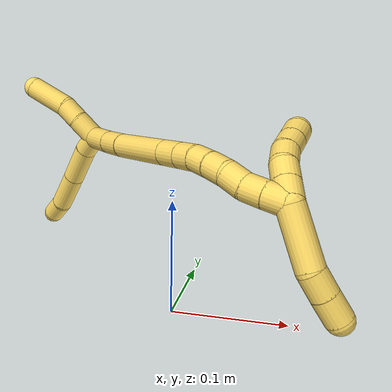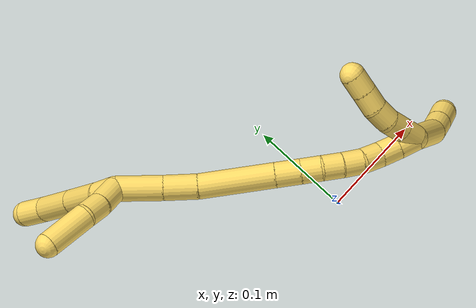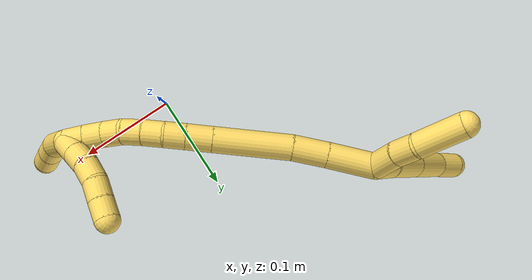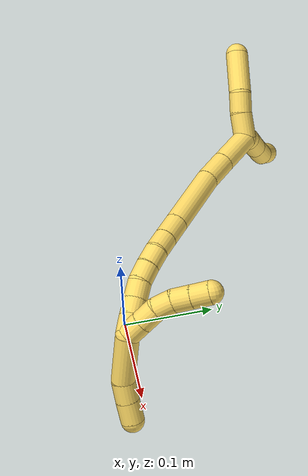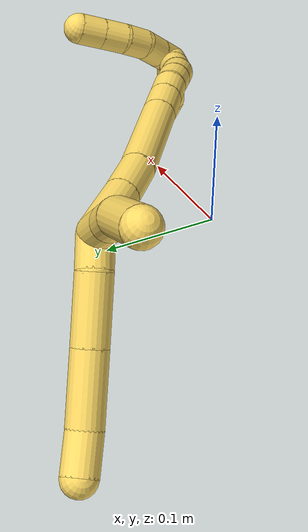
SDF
<sdf version="1.7">
 <world name="default">
  <model name="5">
   <static>0</static>
   <link name="5">
    <collision name="collision-cylinder-e_1_2_8">
     <pose>-0.011581 0.002205 -0.00251 -2.42087 -1.28992 2.21286</pose>
     <geometry><cylinder><radius>0.0125</radius><length>0.024106</length></cylinder></geometry>
     <surface>
      <friction><ode><mu>1.16</mu><mu2>1.16</mu2><slip1>0</slip1><slip2>0</slip2></ode></friction>
      <contact><ode><kp>1e+06</kp><kd>1</kd><max_vel>0</max_vel><min_depth>0.001</min_depth></ode></contact>
     </surface>
    </collision>
    <visual name="visual-cylinder-e_1_2_8">
     <pose>-0.011581 0.002205 -0.00251 -2.42087 -1.28992 2.21286</pose>
     <geometry><cylinder><radius>0.0125</radius><length>0.024106</length></cylinder></geometry>
     <material><ambient>1 0.858824 0.4 1</ambient></material>
    </visual>
    <collision name="collision-cylinder-e_2_8_9">
     <pose>-0.044568 0.008166 -0.014063 -2.74788 -1.14179 2.53939</pose>
     <geometry><cylinder><radius>0.0125</radius><length>0.047079</length></cylinder></geometry>
     <surface>
      <friction><ode><mu>1.16</mu><mu2>1.16</mu2><slip1>0</slip1><slip2>0</slip2></ode></friction>
      <contact><ode><kp>1e+06</kp><kd>1</kd><max_vel>0</max_vel><min_depth>0.001</min_depth></ode></contact>
     </surface>
    </collision>
    <visual name="visual-cylinder-e_2_8_9">
     <pose>-0.044568 0.008166 -0.014063 -2.74788 -1.14179 2.53939</pose>
     <geometry><cylinder><radius>0.0125</radius><length>0.047079</length></cylinder></geometry>
     <material><ambient>1 0.858824 0.4 1</ambient></material>
    </visual>
    <collision name="collision-cylinder-e_3_9_10">
     <pose>-0.088836 0.016153 -0.032305 -2.71058 -1.15387 2.49264</pose>
     <geometry><cylinder><radius>0.0125</radius><length>0.050007</length></cylinder></geometry>
     <surface>
      <friction><ode><mu>1.16</mu><mu2>1.16</mu2><slip1>0</slip1><slip2>0</slip2></ode></friction>
      <contact><ode><kp>1e+06</kp><kd>1</kd><max_vel>0</max_vel><min_depth>0.001</min_depth></ode></contact>
     </surface>
    </collision>
    <visual name="visual-cylinder-e_3_9_10">
     <pose>-0.088836 0.016153 -0.032305 -2.71058 -1.15387 2.49264</pose>
     <geometry><cylinder><radius>0.0125</radius><length>0.050007</length></cylinder></geometry>
     <material><ambient>1 0.858824 0.4 1</ambient></material>
    </visual>
    <collision name="collision-cylinder-e_4_10_6">
     <pose>-0.125354 0.024273 -0.04392 -2.12661 -1.24722 1.82548</pose>
     <geometry><cylinder><radius>0.0125</radius><length>0.028808</length></cylinder></geometry>
     <surface>
      <friction><ode><mu>1.16</mu><mu2>1.16</mu2><slip1>0</slip1><slip2>0</slip2></ode></friction>
      <contact><ode><kp>1e+06</kp><kd>1</kd><max_vel>0</max_vel><min_depth>0.001</min_depth></ode></contact>
     </surface>
    </collision>
    <visual name="visual-cylinder-e_4_10_6">
     <pose>-0.125354 0.024273 -0.04392 -2.12661 -1.24722 1.82548</pose>
     <geometry><cylinder><radius>0.0125</radius><length>0.028808</length></cylinder></geometry>
     <material><ambient>1 0.858824 0.4 1</ambient></material>
    </visual>
    <collision name="collision-cylinder-e_1_2_11">
     <pose>-0.002727 -0.000408 0.014197 0.028763 -0.189668 -0.002736</pose>
     <geometry><cylinder><radius>0.0125</radius><length>0.028924</length></cylinder></geometry>
     <surface>
      <friction><ode><mu>1.16</mu><mu2>1.16</mu2><slip1>0</slip1><slip2>0</slip2></ode></friction>
      <contact><ode><kp>1e+06</kp><kd>1</kd><max_vel>0</max_vel><min_depth>0.001</min_depth></ode></contact>
     </surface>
    </collision>
    <visual name="visual-cylinder-e_1_2_11">
     <pose>-0.002727 -0.000408 0.014197 0.028763 -0.189668 -0.002736</pose>
     <geometry><cylinder><radius>0.0125</radius><length>0.028924</length></cylinder></geometry>
     <material><ambient>1 0.858824 0.4 1</ambient></material>
    </visual>
    <collision name="collision-cylinder-e_2_11_12">
     <pose>-0.00833 0.000207 0.039559 -0.09143 -0.251183 0.011552</pose>
     <geometry><cylinder><radius>0.0125</radius><length>0.02315</length></cylinder></geometry>
     <surface>
      <friction><ode><mu>1.16</mu><mu2>1.16</mu2><slip1>0</slip1><slip2>0</slip2></ode></friction>
      <contact><ode><kp>1e+06</kp><kd>1</kd><max_vel>0</max_vel><min_depth>0.001</min_depth></ode></contact>
     </surface>
    </collision>
    <visual name="visual-cylinder-e_2_11_12">
     <pose>-0.00833 0.000207 0.039559 -0.09143 -0.251183 0.011552</pose>
     <geometry><cylinder><radius>0.0125</radius><length>0.02315</length></cylinder></geometry>
     <material><ambient>1 0.858824 0.4 1</ambient></material>
    </visual>
    <collision name="collision-cylinder-e_3_12_5">
     <pose>-0.02322 0.002538 0.071417 -0.063121 -0.525111 0.01697</pose>
     <geometry><cylinder><radius>0.0125</radius><length>0.047926</length></cylinder></geometry>
     <surface>
      <friction><ode><mu>1.16</mu><mu2>1.16</mu2><slip1>0</slip1><slip2>0</slip2></ode></friction>
      <contact><ode><kp>1e+06</kp><kd>1</kd><max_vel>0</max_vel><min_depth>0.001</min_depth></ode></contact>
     </surface>
    </collision>
    <visual name="visual-cylinder-e_3_12_5">
     <pose>-0.02322 0.002538 0.071417 -0.063121 -0.525111 0.01697</pose>
     <geometry><cylinder><radius>0.0125</radius><length>0.047926</length></cylinder></geometry>
     <material><ambient>1 0.858824 0.4 1</ambient></material>
    </visual>
    <collision name="collision-cylinder-e_1_2_13">
     <pose>0.015897 -0.014302 -0.008865 2.12568 0.756998 1.2406</pose>
     <geometry><cylinder><radius>0.0125</radius><length>0.046297</length></cylinder></geometry>
     <surface>
      <friction><ode><mu>1.16</mu><mu2>1.16</mu2><slip1>0</slip1><slip2>0</slip2></ode></friction>
      <contact><ode><kp>1e+06</kp><kd>1</kd><max_vel>0</max_vel><min_depth>0.001</min_depth></ode></contact>
     </surface>
    </collision>
    <visual name="visual-cylinder-e_1_2_13">
     <pose>0.015897 -0.014302 -0.008865 2.12568 0.756998 1.2406</pose>
     <geometry><cylinder><radius>0.0125</radius><length>0.046297</length></cylinder></geometry>
     <material><ambient>1 0.858824 0.4 1</ambient></material>
    </visual>
    <collision name="collision-cylinder-e_2_13_14">
     <pose>0.043716 -0.038554 -0.02393 2.12805 0.793759 1.29338</pose>
     <geometry><cylinder><radius>0.0125</radius><length>0.033441</length></cylinder></geometry>
     <surface>
      <friction><ode><mu>1.16</mu><mu2>1.16</mu2><slip1>0</slip1><slip2>0</slip2></ode></friction>
      <contact><ode><kp>1e+06</kp><kd>1</kd><max_vel>0</max_vel><min_depth>0.001</min_depth></ode></contact>
     </surface>
    </collision>
    <visual name="visual-cylinder-e_2_13_14">
     <pose>0.043716 -0.038554 -0.02393 2.12805 0.793759 1.29338</pose>
     <geometry><cylinder><radius>0.0125</radius><length>0.033441</length></cylinder></geometry>
     <material><ambient>1 0.858824 0.4 1</ambient></material>
    </visual>
    <collision name="collision-cylinder-e_3_14_15">
     <pose>0.084133 -0.067561 -0.045334 2.2442 0.863109 1.52633</pose>
     <geometry><cylinder><radius>0.0125</radius><length>0.075001</length></cylinder></geometry>
     <surface>
      <friction><ode><mu>1.16</mu><mu2>1.16</mu2><slip1>0</slip1><slip2>0</slip2></ode></friction>
      <contact><ode><kp>1e+06</kp><kd>1</kd><max_vel>0</max_vel><min_depth>0.001</min_depth></ode></contact>
     </surface>
    </collision>
    <visual name="visual-cylinder-e_3_14_15">
     <pose>0.084133 -0.067561 -0.045334 2.2442 0.863109 1.52633</pose>
     <geometry><cylinder><radius>0.0125</radius><length>0.075001</length></cylinder></geometry>
     <material><ambient>1 0.858824 0.4 1</ambient></material>
    </visual>
    <collision name="collision-cylinder-e_4_15_16">
     <pose>0.122134 -0.093016 -0.065623 2.24239 0.860614 1.52074</pose>
     <geometry><cylinder><radius>0.0125</radius><length>0.025073</length></cylinder></geometry>
     <surface>
      <friction><ode><mu>1.16</mu><mu2>1.16</mu2><slip1>0</slip1><slip2>0</slip2></ode></friction>
      <contact><ode><kp>1e+06</kp><kd>1</kd><max_vel>0</max_vel><min_depth>0.001</min_depth></ode></contact>
     </surface>
    </collision>
    <visual name="visual-cylinder-e_4_15_16">
     <pose>0.122134 -0.093016 -0.065623 2.24239 0.860614 1.52074</pose>
     <geometry><cylinder><radius>0.0125</radius><length>0.025073</length></cylinder></geometry>
     <material><ambient>1 0.858824 0.4 1</ambient></material>
    </visual>
    <collision name="collision-cylinder-e_5_16_17">
     <pose>0.139245 -0.104519 -0.074901 2.25829 0.855633 1.53458</pose>
     <geometry><cylinder><radius>0.0125</radius><length>0.020146</length></cylinder></geometry>
     <surface>
      <friction><ode><mu>1.16</mu><mu2>1.16</mu2><slip1>0</slip1><slip2>0</slip2></ode></friction>
      <contact><ode><kp>1e+06</kp><kd>1</kd><max_vel>0</max_vel><min_depth>0.001</min_depth></ode></contact>
     </surface>
    </collision>
    <visual name="visual-cylinder-e_5_16_17">
     <pose>0.139245 -0.104519 -0.074901 2.25829 0.855633 1.53458</pose>
     <geometry><cylinder><radius>0.0125</radius><length>0.020146</length></cylinder></geometry>
     <material><ambient>1 0.858824 0.4 1</ambient></material>
    </visual>
    <collision name="collision-cylinder-e_6_17_18">
     <pose>0.153362 -0.114821 -0.084654 2.39011 0.70777 1.50525</pose>
     <geometry><cylinder><radius>0.0125</radius><length>0.020034</length></cylinder></geometry>
     <surface>
      <friction><ode><mu>1.16</mu><mu2>1.16</mu2><slip1>0</slip1><slip2>0</slip2></ode></friction>
      <contact><ode><kp>1e+06</kp><kd>1</kd><max_vel>0</max_vel><min_depth>0.001</min_depth></ode></contact>
     </surface>
    </collision>
    <visual name="visual-cylinder-e_6_17_18">
     <pose>0.153362 -0.114821 -0.084654 2.39011 0.70777 1.50525</pose>
     <geometry><cylinder><radius>0.0125</radius><length>0.020034</length></cylinder></geometry>
     <material><ambient>1 0.858824 0.4 1</ambient></material>
    </visual>
    <collision name="collision-cylinder-e_7_18_19">
     <pose>0.166031 -0.124869 -0.096429 2.47858 0.663003 1.57078</pose>
     <geometry><cylinder><radius>0.0125</radius><length>0.020005</length></cylinder></geometry>
     <surface>
      <friction><ode><mu>1.16</mu><mu2>1.16</mu2><slip1>0</slip1><slip2>0</slip2></ode></friction>
      <contact><ode><kp>1e+06</kp><kd>1</kd><max_vel>0</max_vel><min_depth>0.001</min_depth></ode></contact>
     </surface>
    </collision>
    <visual name="visual-cylinder-e_7_18_19">
     <pose>0.166031 -0.124869 -0.096429 2.47858 0.663003 1.57078</pose>
     <geometry><cylinder><radius>0.0125</radius><length>0.020005</length></cylinder></geometry>
     <material><ambient>1 0.858824 0.4 1</ambient></material>
    </visual>
    <collision name="collision-cylinder-e_8_19_20">
     <pose>0.177167 -0.133086 -0.110636 2.74321 0.521139 1.84553</pose>
     <geometry><cylinder><radius>0.0125</radius><length>0.020001</length></cylinder></geometry>
     <surface>
      <friction><ode><mu>1.16</mu><mu2>1.16</mu2><slip1>0</slip1><slip2>0</slip2></ode></friction>
      <contact><ode><kp>1e+06</kp><kd>1</kd><max_vel>0</max_vel><min_depth>0.001</min_depth></ode></contact>
     </surface>
    </collision>
    <visual name="visual-cylinder-e_8_19_20">
     <pose>0.177167 -0.133086 -0.110636 2.74321 0.521139 1.84553</pose>
     <geometry><cylinder><radius>0.0125</radius><length>0.020001</length></cylinder></geometry>
     <material><ambient>1 0.858824 0.4 1</ambient></material>
    </visual>
    <collision name="collision-cylinder-e_9_20_21">
     <pose>0.189032 -0.139271 -0.12531 2.74204 0.759604 2.20277</pose>
     <geometry><cylinder><radius>0.0125</radius><length>0.02</length></cylinder></geometry>
     <surface>
      <friction><ode><mu>1.16</mu><mu2>1.16</mu2><slip1>0</slip1><slip2>0</slip2></ode></friction>
      <contact><ode><kp>1e+06</kp><kd>1</kd><max_vel>0</max_vel><min_depth>0.001</min_depth></ode></contact>
     </surface>
    </collision>
    <visual name="visual-cylinder-e_9_20_21">
     <pose>0.189032 -0.139271 -0.12531 2.74204 0.759604 2.20277</pose>
     <geometry><cylinder><radius>0.0125</radius><length>0.02</length></cylinder></geometry>
     <material><ambient>1 0.858824 0.4 1</ambient></material>
    </visual>
    <collision name="collision-cylinder-e_10_21_1">
     <pose>0.203001 -0.144518 -0.13862 2.79076 0.787012 2.33461</pose>
     <geometry><cylinder><radius>0.0125</radius><length>0.020001</length></cylinder></geometry>
     <surface>
      <friction><ode><mu>1.16</mu><mu2>1.16</mu2><slip1>0</slip1><slip2>0</slip2></ode></friction>
      <contact><ode><kp>1e+06</kp><kd>1</kd><max_vel>0</max_vel><min_depth>0.001</min_depth></ode></contact>
     </surface>
    </collision>
    <visual name="visual-cylinder-e_10_21_1">
     <pose>0.203001 -0.144518 -0.13862 2.79076 0.787012 2.33461</pose>
     <geometry><cylinder><radius>0.0125</radius><length>0.020001</length></cylinder></geometry>
     <material><ambient>1 0.858824 0.4 1</ambient></material>
    </visual>
    <collision name="collision-cylinder-e_1_1_22">
     <pose>0.21061 -0.138915 -0.139313 -0.934147 0.0526 -0.02653</pose>
     <geometry><cylinder><radius>0.0125</radius><length>0.02</length></cylinder></geometry>
     <surface>
      <friction><ode><mu>1.16</mu><mu2>1.16</mu2><slip1>0</slip1><slip2>0</slip2></ode></friction>
      <contact><ode><kp>1e+06</kp><kd>1</kd><max_vel>0</max_vel><min_depth>0.001</min_depth></ode></contact>
     </surface>
    </collision>
    <visual name="visual-cylinder-e_1_1_22">
     <pose>0.21061 -0.138915 -0.139313 -0.934147 0.0526 -0.02653</pose>
     <geometry><cylinder><radius>0.0125</radius><length>0.02</length></cylinder></geometry>
     <material><ambient>1 0.858824 0.4 1</ambient></material>
    </visual>
    <collision name="collision-cylinder-e_2_22_23">
     <pose>0.211656 -0.122853 -0.127442 -0.934539 0.052111 -0.026296</pose>
     <geometry><cylinder><radius>0.0125</radius><length>0.02</length></cylinder></geometry>
     <surface>
      <friction><ode><mu>1.16</mu><mu2>1.16</mu2><slip1>0</slip1><slip2>0</slip2></ode></friction>
      <contact><ode><kp>1e+06</kp><kd>1</kd><max_vel>0</max_vel><min_depth>0.001</min_depth></ode></contact>
     </surface>
    </collision>
    <visual name="visual-cylinder-e_2_22_23">
     <pose>0.211656 -0.122853 -0.127442 -0.934539 0.052111 -0.026296</pose>
     <geometry><cylinder><radius>0.0125</radius><length>0.02</length></cylinder></geometry>
     <material><ambient>1 0.858824 0.4 1</ambient></material>
    </visual>
    <collision name="collision-cylinder-e_3_23_24">
     <pose>0.213043 -0.105476 -0.118054 -1.21668 0.086645 -0.060363</pose>
     <geometry><cylinder><radius>0.0125</radius><length>0.02</length></cylinder></geometry>
     <surface>
      <friction><ode><mu>1.16</mu><mu2>1.16</mu2><slip1>0</slip1><slip2>0</slip2></ode></friction>
      <contact><ode><kp>1e+06</kp><kd>1</kd><max_vel>0</max_vel><min_depth>0.001</min_depth></ode></contact>
     </surface>
    </collision>
    <visual name="visual-cylinder-e_3_23_24">
     <pose>0.213043 -0.105476 -0.118054 -1.21668 0.086645 -0.060363</pose>
     <geometry><cylinder><radius>0.0125</radius><length>0.02</length></cylinder></geometry>
     <material><ambient>1 0.858824 0.4 1</ambient></material>
    </visual>
    <collision name="collision-cylinder-e_4_24_25">
     <pose>0.215852 -0.086433 -0.113128 -1.42026 0.195613 -0.168319</pose>
     <geometry><cylinder><radius>0.0125</radius><length>0.02</length></cylinder></geometry>
     <surface>
      <friction><ode><mu>1.16</mu><mu2>1.16</mu2><slip1>0</slip1><slip2>0</slip2></ode></friction>
      <contact><ode><kp>1e+06</kp><kd>1</kd><max_vel>0</max_vel><min_depth>0.001</min_depth></ode></contact>
     </surface>
    </collision>
    <visual name="visual-cylinder-e_4_24_25">
     <pose>0.215852 -0.086433 -0.113128 -1.42026 0.195613 -0.168319</pose>
     <geometry><cylinder><radius>0.0125</radius><length>0.02</length></cylinder></geometry>
     <material><ambient>1 0.858824 0.4 1</ambient></material>
    </visual>
    <collision name="collision-cylinder-e_5_25_4">
     <pose>0.219633 -0.067022 -0.110149 -1.41674 0.184763 -0.158405</pose>
     <geometry><cylinder><radius>0.0125</radius><length>0.02</length></cylinder></geometry>
     <surface>
      <friction><ode><mu>1.16</mu><mu2>1.16</mu2><slip1>0</slip1><slip2>0</slip2></ode></friction>
      <contact><ode><kp>1e+06</kp><kd>1</kd><max_vel>0</max_vel><min_depth>0.001</min_depth></ode></contact>
     </surface>
    </collision>
    <visual name="visual-cylinder-e_5_25_4">
     <pose>0.219633 -0.067022 -0.110149 -1.41674 0.184763 -0.158405</pose>
     <geometry><cylinder><radius>0.0125</radius><length>0.02</length></cylinder></geometry>
     <material><ambient>1 0.858824 0.4 1</ambient></material>
    </visual>
    <collision name="collision-cylinder-e_1_1_26">
     <pose>0.204644 -0.153254 -0.170773 2.89924 -0.204045 -1.39816</pose>
     <geometry><cylinder><radius>0.0125</radius><length>0.053697</length></cylinder></geometry>
     <surface>
      <friction><ode><mu>1.16</mu><mu2>1.16</mu2><slip1>0</slip1><slip2>0</slip2></ode></friction>
      <contact><ode><kp>1e+06</kp><kd>1</kd><max_vel>0</max_vel><min_depth>0.001</min_depth></ode></contact>
     </surface>
    </collision>
    <visual name="visual-cylinder-e_1_1_26">
     <pose>0.204644 -0.153254 -0.170773 2.89924 -0.204045 -1.39816</pose>
     <geometry><cylinder><radius>0.0125</radius><length>0.053697</length></cylinder></geometry>
     <material><ambient>1 0.858824 0.4 1</ambient></material>
    </visual>
    <collision name="collision-cylinder-e_2_26_27">
     <pose>0.198292 -0.159041 -0.207471 -3.09482 -0.081268 2.09751</pose>
     <geometry><cylinder><radius>0.0125</radius><length>0.022449</length></cylinder></geometry>
     <surface>
      <friction><ode><mu>1.16</mu><mu2>1.16</mu2><slip1>0</slip1><slip2>0</slip2></ode></friction>
      <contact><ode><kp>1e+06</kp><kd>1</kd><max_vel>0</max_vel><min_depth>0.001</min_depth></ode></contact>
     </surface>
    </collision>
    <visual name="visual-cylinder-e_2_26_27">
     <pose>0.198292 -0.159041 -0.207471 -3.09482 -0.081268 2.09751</pose>
     <geometry><cylinder><radius>0.0125</radius><length>0.022449</length></cylinder></geometry>
     <material><ambient>1 0.858824 0.4 1</ambient></material>
    </visual>
    <collision name="collision-cylinder-e_3_27_3">
     <pose>0.196591 -0.157563 -0.230509 -3.06123 -0.066276 1.37911</pose>
     <geometry><cylinder><radius>0.0125</radius><length>0.023854</length></cylinder></geometry>
     <surface>
      <friction><ode><mu>1.16</mu><mu2>1.16</mu2><slip1>0</slip1><slip2>0</slip2></ode></friction>
      <contact><ode><kp>1e+06</kp><kd>1</kd><max_vel>0</max_vel><min_depth>0.001</min_depth></ode></contact>
     </surface>
    </collision>
    <visual name="visual-cylinder-e_3_27_3">
     <pose>0.196591 -0.157563 -0.230509 -3.06123 -0.066276 1.37911</pose>
     <geometry><cylinder><radius>0.0125</radius><length>0.023854</length></cylinder></geometry>
     <material><ambient>1 0.858824 0.4 1</ambient></material>
    </visual>
    <collision name="collision-sphere-3">
     <pose>0.195801 -0.156607 -0.242371 0 -0 0</pose>
     <geometry><sphere><radius>0.0125</radius></sphere></geometry>
     <surface>
      <friction><ode><mu>1.16</mu><mu2>1.16</mu2><slip1>0</slip1><slip2>0</slip2></ode></friction>
      <contact><ode><kp>1e+06</kp><kd>1</kd><max_vel>0</max_vel><min_depth>0.001</min_depth></ode></contact>
     </surface>
    </collision>
    <visual name="visual-sphere-3">
     <pose>0.195801 -0.156607 -0.242371 0 -0 0</pose>
     <geometry><sphere><radius>0.0125</radius></sphere></geometry>
     <material><ambient>1 0.858824 0.4 1</ambient></material>
    </visual>
    <collision name="collision-sphere-27">
     <pose>0.197381 -0.158518 -0.218646 0 -0 0</pose>
     <geometry><sphere><radius>0.0125</radius></sphere></geometry>
     <surface>
      <friction><ode><mu>1.16</mu><mu2>1.16</mu2><slip1>0</slip1><slip2>0</slip2></ode></friction>
      <contact><ode><kp>1e+06</kp><kd>1</kd><max_vel>0</max_vel><min_depth>0.001</min_depth></ode></contact>
     </surface>
    </collision>
    <visual name="visual-sphere-27">
     <pose>0.197381 -0.158518 -0.218646 0 -0 0</pose>
     <geometry><sphere><radius>0.0125</radius></sphere></geometry>
     <material><ambient>1 0.858824 0.4 1</ambient></material>
    </visual>
    <collision name="collision-sphere-26">
     <pose>0.199203 -0.159564 -0.196296 0 -0 0</pose>
     <geometry><sphere><radius>0.0125</radius></sphere></geometry>
     <surface>
      <friction><ode><mu>1.16</mu><mu2>1.16</mu2><slip1>0</slip1><slip2>0</slip2></ode></friction>
      <contact><ode><kp>1e+06</kp><kd>1</kd><max_vel>0</max_vel><min_depth>0.001</min_depth></ode></contact>
     </surface>
    </collision>
    <visual name="visual-sphere-26">
     <pose>0.199203 -0.159564 -0.196296 0 -0 0</pose>
     <geometry><sphere><radius>0.0125</radius></sphere></geometry>
     <material><ambient>1 0.858824 0.4 1</ambient></material>
    </visual>
    <collision name="collision-sphere-4">
     <pose>0.22147 -0.057308 -0.10864 0 -0 0</pose>
     <geometry><sphere><radius>0.0125</radius></sphere></geometry>
     <surface>
      <friction><ode><mu>1.16</mu><mu2>1.16</mu2><slip1>0</slip1><slip2>0</slip2></ode></friction>
      <contact><ode><kp>1e+06</kp><kd>1</kd><max_vel>0</max_vel><min_depth>0.001</min_depth></ode></contact>
     </surface>
    </collision>
    <visual name="visual-sphere-4">
     <pose>0.22147 -0.057308 -0.10864 0 -0 0</pose>
     <geometry><sphere><radius>0.0125</radius></sphere></geometry>
     <material><ambient>1 0.858824 0.4 1</ambient></material>
    </visual>
    <collision name="collision-sphere-25">
     <pose>0.217795 -0.076735 -0.111657 0 -0 0</pose>
     <geometry><sphere><radius>0.0125</radius></sphere></geometry>
     <surface>
      <friction><ode><mu>1.16</mu><mu2>1.16</mu2><slip1>0</slip1><slip2>0</slip2></ode></friction>
      <contact><ode><kp>1e+06</kp><kd>1</kd><max_vel>0</max_vel><min_depth>0.001</min_depth></ode></contact>
     </surface>
    </collision>
    <visual name="visual-sphere-25">
     <pose>0.217795 -0.076735 -0.111657 0 -0 0</pose>
     <geometry><sphere><radius>0.0125</radius></sphere></geometry>
     <material><ambient>1 0.858824 0.4 1</ambient></material>
    </visual>
    <collision name="collision-sphere-24">
     <pose>0.213908 -0.096132 -0.114599 0 -0 0</pose>
     <geometry><sphere><radius>0.0125</radius></sphere></geometry>
     <surface>
      <friction><ode><mu>1.16</mu><mu2>1.16</mu2><slip1>0</slip1><slip2>0</slip2></ode></friction>
      <contact><ode><kp>1e+06</kp><kd>1</kd><max_vel>0</max_vel><min_depth>0.001</min_depth></ode></contact>
     </surface>
    </collision>
    <visual name="visual-sphere-24">
     <pose>0.213908 -0.096132 -0.114599 0 -0 0</pose>
     <geometry><sphere><radius>0.0125</radius></sphere></geometry>
     <material><ambient>1 0.858824 0.4 1</ambient></material>
    </visual>
    <collision name="collision-sphere-23">
     <pose>0.212177 -0.11482 -0.121508 0 -0 0</pose>
     <geometry><sphere><radius>0.0125</radius></sphere></geometry>
     <surface>
      <friction><ode><mu>1.16</mu><mu2>1.16</mu2><slip1>0</slip1><slip2>0</slip2></ode></friction>
      <contact><ode><kp>1e+06</kp><kd>1</kd><max_vel>0</max_vel><min_depth>0.001</min_depth></ode></contact>
     </surface>
    </collision>
    <visual name="visual-sphere-23">
     <pose>0.212177 -0.11482 -0.121508 0 -0 0</pose>
     <geometry><sphere><radius>0.0125</radius></sphere></geometry>
     <material><ambient>1 0.858824 0.4 1</ambient></material>
    </visual>
    <collision name="collision-sphere-22">
     <pose>0.211136 -0.130885 -0.133376 0 -0 0</pose>
     <geometry><sphere><radius>0.0125</radius></sphere></geometry>
     <surface>
      <friction><ode><mu>1.16</mu><mu2>1.16</mu2><slip1>0</slip1><slip2>0</slip2></ode></friction>
      <contact><ode><kp>1e+06</kp><kd>1</kd><max_vel>0</max_vel><min_depth>0.001</min_depth></ode></contact>
     </surface>
    </collision>
    <visual name="visual-sphere-22">
     <pose>0.211136 -0.130885 -0.133376 0 -0 0</pose>
     <geometry><sphere><radius>0.0125</radius></sphere></geometry>
     <material><ambient>1 0.858824 0.4 1</ambient></material>
    </visual>
    <collision name="collision-sphere-1">
     <pose>0.210084 -0.146945 -0.14525 0 -0 0</pose>
     <geometry><sphere><radius>0.0125</radius></sphere></geometry>
     <surface>
      <friction><ode><mu>1.16</mu><mu2>1.16</mu2><slip1>0</slip1><slip2>0</slip2></ode></friction>
      <contact><ode><kp>1e+06</kp><kd>1</kd><max_vel>0</max_vel><min_depth>0.001</min_depth></ode></contact>
     </surface>
    </collision>
    <visual name="visual-sphere-1">
     <pose>0.210084 -0.146945 -0.14525 0 -0 0</pose>
     <geometry><sphere><radius>0.0125</radius></sphere></geometry>
     <material><ambient>1 0.858824 0.4 1</ambient></material>
    </visual>
    <collision name="collision-sphere-21">
     <pose>0.195919 -0.142092 -0.13199 0 -0 0</pose>
     <geometry><sphere><radius>0.0125</radius></sphere></geometry>
     <surface>
      <friction><ode><mu>1.16</mu><mu2>1.16</mu2><slip1>0</slip1><slip2>0</slip2></ode></friction>
      <contact><ode><kp>1e+06</kp><kd>1</kd><max_vel>0</max_vel><min_depth>0.001</min_depth></ode></contact>
     </surface>
    </collision>
    <visual name="visual-sphere-21">
     <pose>0.195919 -0.142092 -0.13199 0 -0 0</pose>
     <geometry><sphere><radius>0.0125</radius></sphere></geometry>
     <material><ambient>1 0.858824 0.4 1</ambient></material>
    </visual>
    <collision name="collision-sphere-11">
     <pose>-0.005453 -0.000817 0.028394 0 -0 0</pose>
     <geometry><sphere><radius>0.0125</radius></sphere></geometry>
     <surface>
      <friction><ode><mu>1.16</mu><mu2>1.16</mu2><slip1>0</slip1><slip2>0</slip2></ode></friction>
      <contact><ode><kp>1e+06</kp><kd>1</kd><max_vel>0</max_vel><min_depth>0.001</min_depth></ode></contact>
     </surface>
    </collision>
    <visual name="visual-sphere-11">
     <pose>-0.005453 -0.000817 0.028394 0 -0 0</pose>
     <geometry><sphere><radius>0.0125</radius></sphere></geometry>
     <material><ambient>1 0.858824 0.4 1</ambient></material>
    </visual>
    <collision name="collision-sphere-6">
     <pose>-0.13901 0.028164 -0.046337 0 -0 0</pose>
     <geometry><sphere><radius>0.0125</radius></sphere></geometry>
     <surface>
      <friction><ode><mu>1.16</mu><mu2>1.16</mu2><slip1>0</slip1><slip2>0</slip2></ode></friction>
      <contact><ode><kp>1e+06</kp><kd>1</kd><max_vel>0</max_vel><min_depth>0.001</min_depth></ode></contact>
     </surface>
    </collision>
    <visual name="visual-sphere-6">
     <pose>-0.13901 0.028164 -0.046337 0 -0 0</pose>
     <geometry><sphere><radius>0.0125</radius></sphere></geometry>
     <material><ambient>1 0.858824 0.4 1</ambient></material>
    </visual>
    <collision name="collision-sphere-10">
     <pose>-0.111698 0.020383 -0.041504 0 -0 0</pose>
     <geometry><sphere><radius>0.0125</radius></sphere></geometry>
     <surface>
      <friction><ode><mu>1.16</mu><mu2>1.16</mu2><slip1>0</slip1><slip2>0</slip2></ode></friction>
      <contact><ode><kp>1e+06</kp><kd>1</kd><max_vel>0</max_vel><min_depth>0.001</min_depth></ode></contact>
     </surface>
    </collision>
    <visual name="visual-sphere-10">
     <pose>-0.111698 0.020383 -0.041504 0 -0 0</pose>
     <geometry><sphere><radius>0.0125</radius></sphere></geometry>
     <material><ambient>1 0.858824 0.4 1</ambient></material>
    </visual>
    <collision name="collision-sphere-9">
     <pose>-0.065974 0.011922 -0.023106 0 -0 0</pose>
     <geometry><sphere><radius>0.0125</radius></sphere></geometry>
     <surface>
      <friction><ode><mu>1.16</mu><mu2>1.16</mu2><slip1>0</slip1><slip2>0</slip2></ode></friction>
      <contact><ode><kp>1e+06</kp><kd>1</kd><max_vel>0</max_vel><min_depth>0.001</min_depth></ode></contact>
     </surface>
    </collision>
    <visual name="visual-sphere-9">
     <pose>-0.065974 0.011922 -0.023106 0 -0 0</pose>
     <geometry><sphere><radius>0.0125</radius></sphere></geometry>
     <material><ambient>1 0.858824 0.4 1</ambient></material>
    </visual>
    <collision name="collision-sphere-2">
     <geometry><sphere><radius>0.0125</radius></sphere></geometry>
     <surface>
      <friction><ode><mu>1.16</mu><mu2>1.16</mu2><slip1>0</slip1><slip2>0</slip2></ode></friction>
      <contact><ode><kp>1e+06</kp><kd>1</kd><max_vel>0</max_vel><min_depth>0.001</min_depth></ode></contact>
     </surface>
    </collision>
    <visual name="visual-sphere-2">
     <geometry><sphere><radius>0.0125</radius></sphere></geometry>
     <material><ambient>1 0.858824 0.4 1</ambient></material>
    </visual>
    <collision name="collision-sphere-19">
     <pose>0.172188 -0.129721 -0.102642 0 -0 0</pose>
     <geometry><sphere><radius>0.0125</radius></sphere></geometry>
     <surface>
      <friction><ode><mu>1.16</mu><mu2>1.16</mu2><slip1>0</slip1><slip2>0</slip2></ode></friction>
      <contact><ode><kp>1e+06</kp><kd>1</kd><max_vel>0</max_vel><min_depth>0.001</min_depth></ode></contact>
     </surface>
    </collision>
    <visual name="visual-sphere-19">
     <pose>0.172188 -0.129721 -0.102642 0 -0 0</pose>
     <geometry><sphere><radius>0.0125</radius></sphere></geometry>
     <material><ambient>1 0.858824 0.4 1</ambient></material>
    </visual>
    <collision name="collision-sphere-8">
     <pose>-0.023162 0.00441 -0.005021 0 -0 0</pose>
     <geometry><sphere><radius>0.0125</radius></sphere></geometry>
     <surface>
      <friction><ode><mu>1.16</mu><mu2>1.16</mu2><slip1>0</slip1><slip2>0</slip2></ode></friction>
      <contact><ode><kp>1e+06</kp><kd>1</kd><max_vel>0</max_vel><min_depth>0.001</min_depth></ode></contact>
     </surface>
    </collision>
    <visual name="visual-sphere-8">
     <pose>-0.023162 0.00441 -0.005021 0 -0 0</pose>
     <geometry><sphere><radius>0.0125</radius></sphere></geometry>
     <material><ambient>1 0.858824 0.4 1</ambient></material>
    </visual>
    <collision name="collision-sphere-12">
     <pose>-0.011207 0.00123 0.050724 0 -0 0</pose>
     <geometry><sphere><radius>0.0125</radius></sphere></geometry>
     <surface>
      <friction><ode><mu>1.16</mu><mu2>1.16</mu2><slip1>0</slip1><slip2>0</slip2></ode></friction>
      <contact><ode><kp>1e+06</kp><kd>1</kd><max_vel>0</max_vel><min_depth>0.001</min_depth></ode></contact>
     </surface>
    </collision>
    <visual name="visual-sphere-12">
     <pose>-0.011207 0.00123 0.050724 0 -0 0</pose>
     <geometry><sphere><radius>0.0125</radius></sphere></geometry>
     <material><ambient>1 0.858824 0.4 1</ambient></material>
    </visual>
    <collision name="collision-sphere-5">
     <pose>-0.035233 0.003846 0.09211 0 -0 0</pose>
     <geometry><sphere><radius>0.0125</radius></sphere></geometry>
     <surface>
      <friction><ode><mu>1.16</mu><mu2>1.16</mu2><slip1>0</slip1><slip2>0</slip2></ode></friction>
      <contact><ode><kp>1e+06</kp><kd>1</kd><max_vel>0</max_vel><min_depth>0.001</min_depth></ode></contact>
     </surface>
    </collision>
    <visual name="visual-sphere-5">
     <pose>-0.035233 0.003846 0.09211 0 -0 0</pose>
     <geometry><sphere><radius>0.0125</radius></sphere></geometry>
     <material><ambient>1 0.858824 0.4 1</ambient></material>
    </visual>
    <collision name="collision-sphere-13">
     <pose>0.031794 -0.028604 -0.01773 0 -0 0</pose>
     <geometry><sphere><radius>0.0125</radius></sphere></geometry>
     <surface>
      <friction><ode><mu>1.16</mu><mu2>1.16</mu2><slip1>0</slip1><slip2>0</slip2></ode></friction>
      <contact><ode><kp>1e+06</kp><kd>1</kd><max_vel>0</max_vel><min_depth>0.001</min_depth></ode></contact>
     </surface>
    </collision>
    <visual name="visual-sphere-13">
     <pose>0.031794 -0.028604 -0.01773 0 -0 0</pose>
     <geometry><sphere><radius>0.0125</radius></sphere></geometry>
     <material><ambient>1 0.858824 0.4 1</ambient></material>
    </visual>
    <collision name="collision-sphere-14">
     <pose>0.055637 -0.048504 -0.030131 0 -0 0</pose>
     <geometry><sphere><radius>0.0125</radius></sphere></geometry>
     <surface>
      <friction><ode><mu>1.16</mu><mu2>1.16</mu2><slip1>0</slip1><slip2>0</slip2></ode></friction>
      <contact><ode><kp>1e+06</kp><kd>1</kd><max_vel>0</max_vel><min_depth>0.001</min_depth></ode></contact>
     </surface>
    </collision>
    <visual name="visual-sphere-14">
     <pose>0.055637 -0.048504 -0.030131 0 -0 0</pose>
     <geometry><sphere><radius>0.0125</radius></sphere></geometry>
     <material><ambient>1 0.858824 0.4 1</ambient></material>
    </visual>
    <collision name="collision-sphere-15">
     <pose>0.112628 -0.086618 -0.060538 0 -0 0</pose>
     <geometry><sphere><radius>0.0125</radius></sphere></geometry>
     <surface>
      <friction><ode><mu>1.16</mu><mu2>1.16</mu2><slip1>0</slip1><slip2>0</slip2></ode></friction>
      <contact><ode><kp>1e+06</kp><kd>1</kd><max_vel>0</max_vel><min_depth>0.001</min_depth></ode></contact>
     </surface>
    </collision>
    <visual name="visual-sphere-15">
     <pose>0.112628 -0.086618 -0.060538 0 -0 0</pose>
     <geometry><sphere><radius>0.0125</radius></sphere></geometry>
     <material><ambient>1 0.858824 0.4 1</ambient></material>
    </visual>
    <collision name="collision-sphere-16">
     <pose>0.131639 -0.099414 -0.070709 0 -0 0</pose>
     <geometry><sphere><radius>0.0125</radius></sphere></geometry>
     <surface>
      <friction><ode><mu>1.16</mu><mu2>1.16</mu2><slip1>0</slip1><slip2>0</slip2></ode></friction>
      <contact><ode><kp>1e+06</kp><kd>1</kd><max_vel>0</max_vel><min_depth>0.001</min_depth></ode></contact>
     </surface>
    </collision>
    <visual name="visual-sphere-16">
     <pose>0.131639 -0.099414 -0.070709 0 -0 0</pose>
     <geometry><sphere><radius>0.0125</radius></sphere></geometry>
     <material><ambient>1 0.858824 0.4 1</ambient></material>
    </visual>
    <collision name="collision-sphere-17">
     <pose>0.14685 -0.109624 -0.079093 0 -0 0</pose>
     <geometry><sphere><radius>0.0125</radius></sphere></geometry>
     <surface>
      <friction><ode><mu>1.16</mu><mu2>1.16</mu2><slip1>0</slip1><slip2>0</slip2></ode></friction>
      <contact><ode><kp>1e+06</kp><kd>1</kd><max_vel>0</max_vel><min_depth>0.001</min_depth></ode></contact>
     </surface>
    </collision>
    <visual name="visual-sphere-17">
     <pose>0.14685 -0.109624 -0.079093 0 -0 0</pose>
     <geometry><sphere><radius>0.0125</radius></sphere></geometry>
     <material><ambient>1 0.858824 0.4 1</ambient></material>
    </visual>
    <collision name="collision-sphere-18">
     <pose>0.159875 -0.120017 -0.090215 0 -0 0</pose>
     <geometry><sphere><radius>0.0125</radius></sphere></geometry>
     <surface>
      <friction><ode><mu>1.16</mu><mu2>1.16</mu2><slip1>0</slip1><slip2>0</slip2></ode></friction>
      <contact><ode><kp>1e+06</kp><kd>1</kd><max_vel>0</max_vel><min_depth>0.001</min_depth></ode></contact>
     </surface>
    </collision>
    <visual name="visual-sphere-18">
     <pose>0.159875 -0.120017 -0.090215 0 -0 0</pose>
     <geometry><sphere><radius>0.0125</radius></sphere></geometry>
     <material><ambient>1 0.858824 0.4 1</ambient></material>
    </visual>
    <collision name="collision-sphere-20">
     <pose>0.182146 -0.136451 -0.11863 0 -0 0</pose>
     <geometry><sphere><radius>0.0125</radius></sphere></geometry>
     <surface>
      <friction><ode><mu>1.16</mu><mu2>1.16</mu2><slip1>0</slip1><slip2>0</slip2></ode></friction>
      <contact><ode><kp>1e+06</kp><kd>1</kd><max_vel>0</max_vel><min_depth>0.001</min_depth></ode></contact>
     </surface>
    </collision>
    <visual name="visual-sphere-20">
     <pose>0.182146 -0.136451 -0.11863 0 -0 0</pose>
     <geometry><sphere><radius>0.0125</radius></sphere></geometry>
     <material><ambient>1 0.858824 0.4 1</ambient></material>
    </visual>
    <inertial>
     <pose>0.082512 -0.064674 -0.065632 0 -0 0</pose>
     <mass>0.75</mass>
     <inertia><ixx>5.9e-05</ixx><ixy>0</ixy><ixz>0</ixz><iyy>0.000113</iyy><iyz>0</iyz><izz>-0</izz></inertia>
    </inertial>
   </link>
   <pose>-0.136533 0.170209 0.125306 0.124896 -0.592044 -0.210041</pose>
  </model>
 </world>
</sdf>
